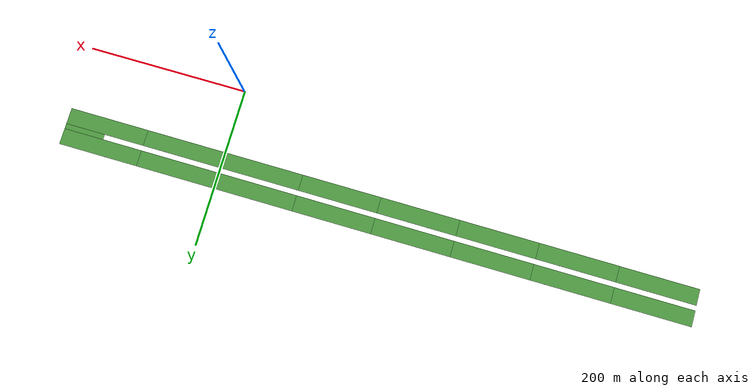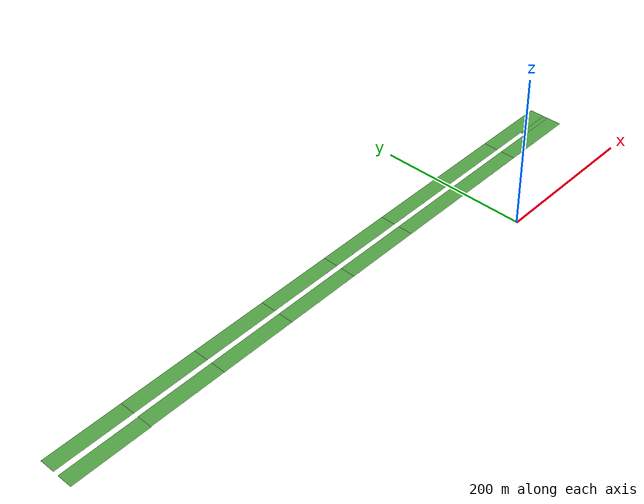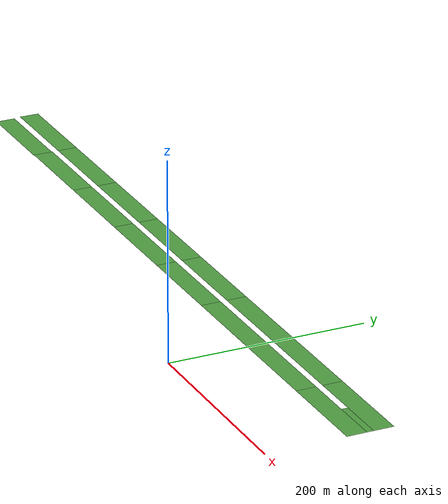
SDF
<sdf version="1.5">
 <world name="default">
  <scene><grid>false</grid></scene>
  <include><uri>model://sun</uri></include>
  <model name="ground">
   <link name="body">
    <collision name="geom">
     <geometry><plane><normal>0 0 1</normal></plane></geometry>
     <surface><friction><ode><mu>100</mu><mu2>50</mu2></ode></friction></surface>
    </collision>
   </link>
   <static>true</static>
  </model>
  <include><uri>model://grass_plane</uri></include>
  <plugin name="SumoUpdate" filename="libSumoWorldPlugin.so">
   <ego_vehicle_model_name>prius</ego_vehicle_model_name>
  </plugin>
 </world>
</sdf>

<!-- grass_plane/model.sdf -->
<sdf version='1.4'>
  <model name='grass_plane'>
    <static>true</static>
    <link name='link'>

      <visual name='visual_0'>
        <pose>-550.0 90 0 0 0 0</pose>
        <cast_shadows>false</cast_shadows>
        <geometry>
          <plane>
            <normal>0 0 1</normal>
            <size>100 20</size>
          </plane>
        </geometry>
        <material>
          <script>
            <uri>model://grass_plane/materials/scripts</uri>
            <uri>model://grass_plane/materials/textures</uri>
            <name>vrc/grass</name>
          </script>
        </material>
      </visual>
      <visual name='visual_1'>
        <pose>-450.0 90 0 0 0 0</pose>
        <cast_shadows>false</cast_shadows>
        <geometry>
          <plane>
            <normal>0 0 1</normal>
            <size>100 20</size>
          </plane>
        </geometry>
        <material>
          <script>
            <uri>model://grass_plane/materials/scripts</uri>
            <uri>model://grass_plane/materials/textures</uri>
            <name>vrc/grass</name>
          </script>
        </material>
      </visual>
      <visual name='visual_2'>
        <pose>-350.0 90 0 0 0 0</pose>
        <cast_shadows>false</cast_shadows>
        <geometry>
          <plane>
            <normal>0 0 1</normal>
            <size>100 20</size>
          </plane>
        </geometry>
        <material>
          <script>
            <uri>model://grass_plane/materials/scripts</uri>
            <uri>model://grass_plane/materials/textures</uri>
            <name>vrc/grass</name>
          </script>
        </material>
      </visual>
      <visual name='visual_3'>
        <pose>-250.0 90 0 0 0 0</pose>
        <cast_shadows>false</cast_shadows>
        <geometry>
          <plane>
            <normal>0 0 1</normal>
            <size>100 20</size>
          </plane>
        </geometry>
        <material>
          <script>
            <uri>model://grass_plane/materials/scripts</uri>
            <uri>model://grass_plane/materials/textures</uri>
            <name>vrc/grass</name>
          </script>
        </material>
      </visual>
      <visual name='visual_4'>
        <pose>-150.0 90 0 0 0 0</pose>
        <cast_shadows>false</cast_shadows>
        <geometry>
          <plane>
            <normal>0 0 1</normal>
            <size>100 20</size>
          </plane>
        </geometry>
        <material>
          <script>
            <uri>model://grass_plane/materials/scripts</uri>
            <uri>model://grass_plane/materials/textures</uri>
            <name>vrc/grass</name>
          </script>
        </material>
      </visual>
      <visual name='visual_5'>
        <pose>-50.0 90 0 0 0 0</pose>
        <cast_shadows>false</cast_shadows>
        <geometry>
          <plane>
            <normal>0 0 1</normal>
            <size>100 20</size>
          </plane>
        </geometry>
        <material>
          <script>
            <uri>model://grass_plane/materials/scripts</uri>
            <uri>model://grass_plane/materials/textures</uri>
            <name>vrc/grass</name>
          </script>
        </material>
      </visual>
      <visual name='visual_6'>
        <pose>50.0 90 0 0 0 0</pose>
        <cast_shadows>false</cast_shadows>
        <geometry>
          <plane>
            <normal>0 0 1</normal>
            <size>100 20</size>
          </plane>
        </geometry>
        <material>
          <script>
            <uri>model://grass_plane/materials/scripts</uri>
            <uri>model://grass_plane/materials/textures</uri>
            <name>vrc/grass</name>
          </script>
        </material>
      </visual>
      <visual name='visual_7'>
        <pose>150.0 90 0 0 0 0</pose>
        <cast_shadows>false</cast_shadows>
        <geometry>
          <plane>
            <normal>0 0 1</normal>
            <size>100 20</size>
          </plane>
        </geometry>
        <material>
          <script>
            <uri>model://grass_plane/materials/scripts</uri>
            <uri>model://grass_plane/materials/textures</uri>
            <name>vrc/grass</name>
          </script>
        </material>
      </visual>
      <visual name='visual_8'>
        <pose>-550.0 116.6 0 0 0 0</pose>
        <cast_shadows>false</cast_shadows>
        <geometry>
          <plane>
            <normal>0 0 1</normal>
            <size>100 20</size>
          </plane>
        </geometry>
        <material>
          <script>
            <uri>model://grass_plane/materials/scripts</uri>
            <uri>model://grass_plane/materials/textures</uri>
            <name>vrc/grass</name>
          </script>
        </material>
      </visual>
      <visual name='visual_9'>
        <pose>-450.0 116.6 0 0 0 0</pose>
        <cast_shadows>false</cast_shadows>
        <geometry>
          <plane>
            <normal>0 0 1</normal>
            <size>100 20</size>
          </plane>
        </geometry>
        <material>
          <script>
            <uri>model://grass_plane/materials/scripts</uri>
            <uri>model://grass_plane/materials/textures</uri>
            <name>vrc/grass</name>
          </script>
        </material>
      </visual>
      <visual name='visual_10'>
        <pose>-350.0 116.6 0 0 0 0</pose>
        <cast_shadows>false</cast_shadows>
        <geometry>
          <plane>
            <normal>0 0 1</normal>
            <size>100 20</size>
          </plane>
        </geometry>
        <material>
          <script>
            <uri>model://grass_plane/materials/scripts</uri>
            <uri>model://grass_plane/materials/textures</uri>
            <name>vrc/grass</name>
          </script>
        </material>
      </visual>
      <visual name='visual_11'>
        <pose>-250.0 116.6 0 0 0 0</pose>
        <cast_shadows>false</cast_shadows>
        <geometry>
          <plane>
            <normal>0 0 1</normal>
            <size>100 20</size>
          </plane>
        </geometry>
        <material>
          <script>
            <uri>model://grass_plane/materials/scripts</uri>
            <uri>model://grass_plane/materials/textures</uri>
            <name>vrc/grass</name>
          </script>
        </material>
      </visual>
      <visual name='visual_12'>
        <pose>-150.0 116.6 0 0 0 0</pose>
        <cast_shadows>false</cast_shadows>
        <geometry>
          <plane>
            <normal>0 0 1</normal>
            <size>100 20</size>
          </plane>
        </geometry>
        <material>
          <script>
            <uri>model://grass_plane/materials/scripts</uri>
            <uri>model://grass_plane/materials/textures</uri>
            <name>vrc/grass</name>
          </script>
        </material>
      </visual>
      <visual name='visual_13'>
        <pose>-50.0 116.6 0 0 0 0</pose>
        <cast_shadows>false</cast_shadows>
        <geometry>
          <plane>
            <normal>0 0 1</normal>
            <size>100 20</size>
          </plane>
        </geometry>
        <material>
          <script>
            <uri>model://grass_plane/materials/scripts</uri>
            <uri>model://grass_plane/materials/textures</uri>
            <name>vrc/grass</name>
          </script>
        </material>
      </visual>
      <visual name='visual_14'>
        <pose>50.0 116.6 0 0 0 0</pose>
        <cast_shadows>false</cast_shadows>
        <geometry>
          <plane>
            <normal>0 0 1</normal>
            <size>100 20</size>
          </plane>
        </geometry>
        <material>
          <script>
            <uri>model://grass_plane/materials/scripts</uri>
            <uri>model://grass_plane/materials/textures</uri>
            <name>vrc/grass</name>
          </script>
        </material>
      </visual>
      <visual name='visual_15'>
        <pose>150.0 116.6 0 0 0 0</pose>
        <cast_shadows>false</cast_shadows>
        <geometry>
          <plane>
            <normal>0 0 1</normal>
            <size>100 20</size>
          </plane>
        </geometry>
        <material>
          <script>
            <uri>model://grass_plane/materials/scripts</uri>
            <uri>model://grass_plane/materials/textures</uri>
            <name>vrc/grass</name>
          </script>
        </material>
      </visual>
      <visual name='visual_16'>
        <pose>175.0 103.3 0 0 0 0</pose>
        <cast_shadows>false</cast_shadows>
        <geometry>
          <plane>
            <normal>0 0 1</normal>
            <size>50 6.6</size>
          </plane>
        </geometry>
        <material>
          <script>
            <uri>model://grass_plane/materials/scripts</uri>
            <uri>model://grass_plane/materials/textures</uri>
            <name>vrc/grass</name>
          </script>
        </material>
      </visual>
    </link>
  </model>
</sdf>
